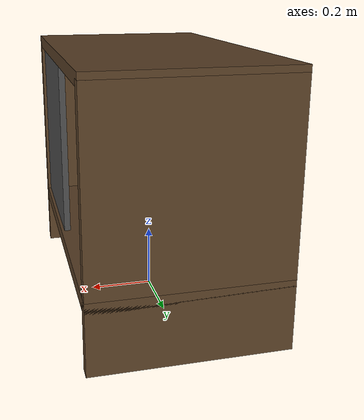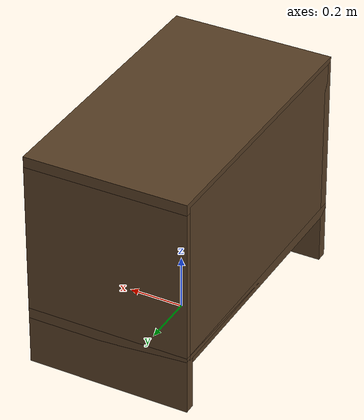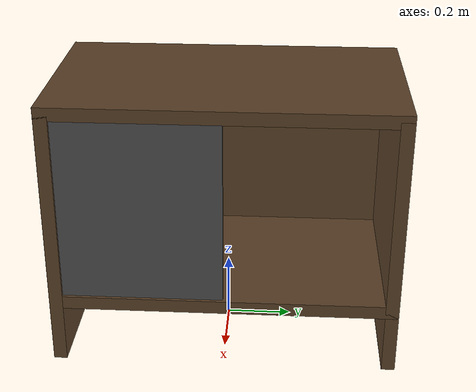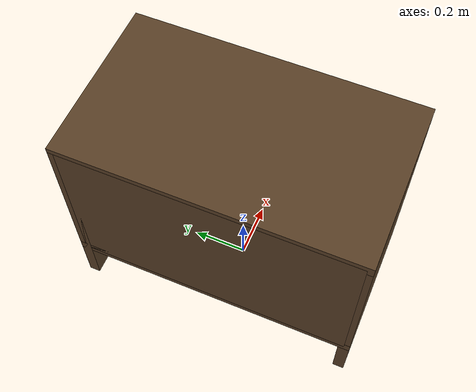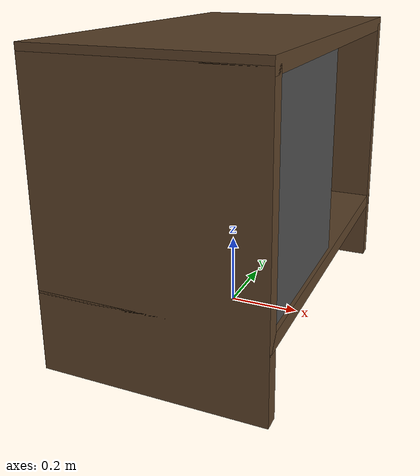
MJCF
<mujoco model="cabinet_half_closed_tall">
  <compiler angle="radian"/>

  <asset>
    <texture type="2d" name="tex_cabinet_half_closed_tall" file="light_wood_v3.png" />
    <material name="mat_cabinet_half_closed_tall" texture="tex_cabinet_half_closed_tall" specular="0.5" shininess="0.5" rgba="0.5 0.5 0.5 1" />
  </asset>

  <worldbody>
    <body name="body_cabinet_half_closed_tall" pos="0 0 0">
      <!-- Cabinet body  -->
      <geom type="box" size="0.3 0.52 0.02" pos="0.0 0.0 0.2" material="mat_cabinet_half_closed_tall" />
      <geom type="box" size="0.3 0.52 0.02" pos="0.0 0.0 0.8" material="mat_cabinet_half_closed_tall" />
      <geom type="box" size="0.02 0.5 0.3" pos="-0.28 0.0 0.5" material="mat_cabinet_half_closed_tall"/>
      <geom type="box" size="0.3 0.02 0.4" pos="0.0 0.5 0.4" material="mat_cabinet_half_closed_tall" />
      <geom type="box" size="0.3 0.02 0.4" pos="0.0 -0.5 0.4" material="mat_cabinet_half_closed_tall" />

      <!-- Cabinet door -->
      <geom type="box" size="0.01 0.25 0.3" pos="0.28 -0.25 0.5" rgba="0.3 0.3 0.3 1" />
    </body>
  </worldbody>

</mujoco>
